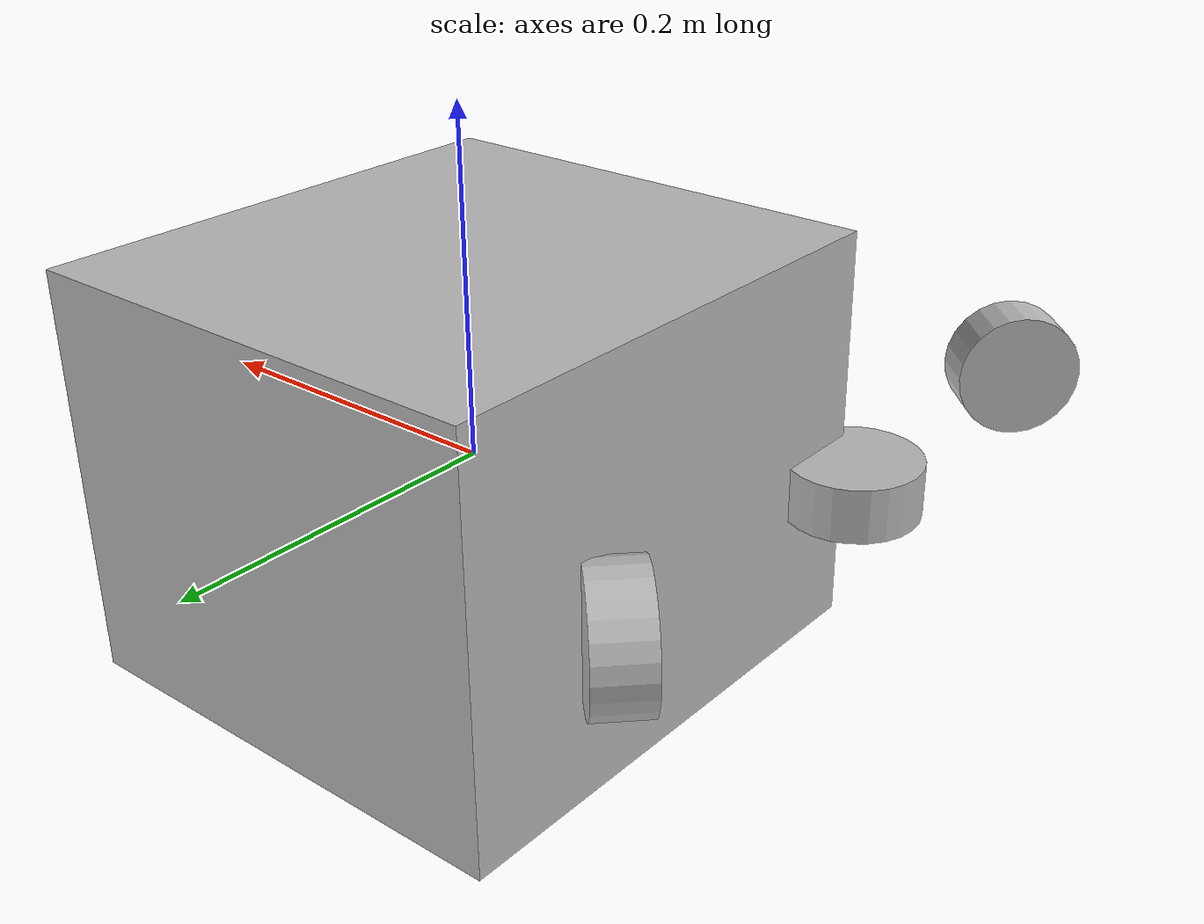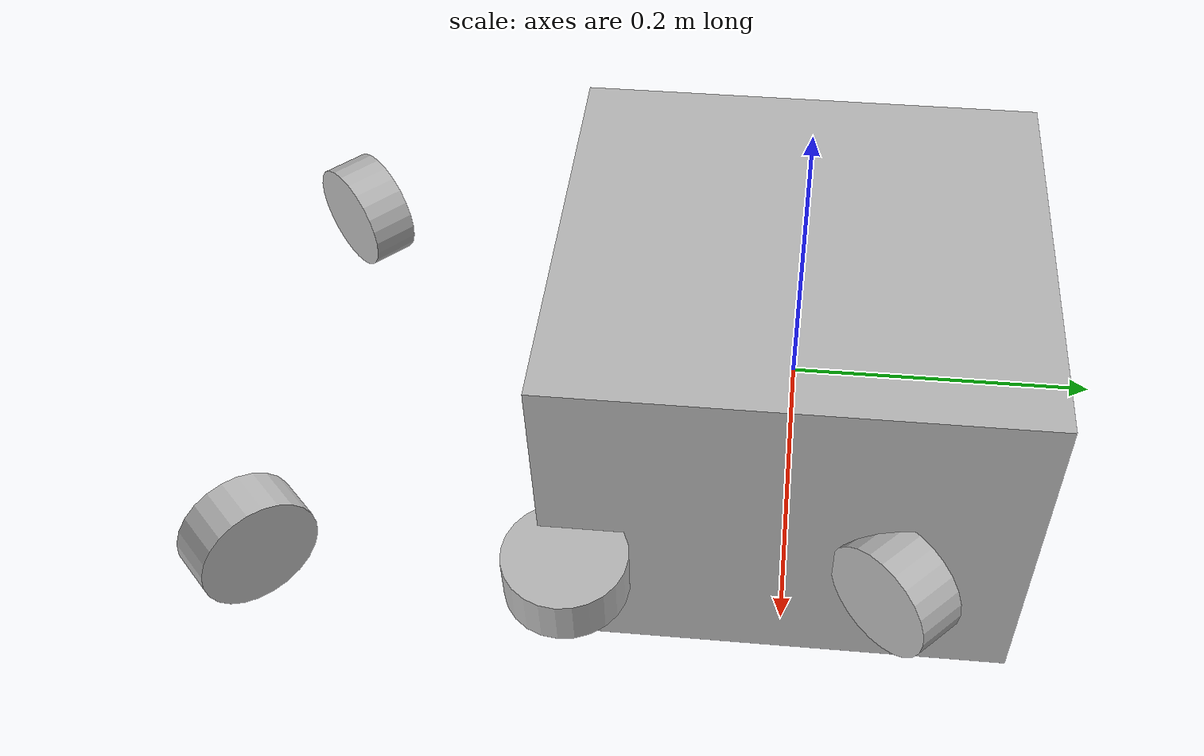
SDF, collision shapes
<?xml version="1.0"?>
<sdf version="1.5">
  <model name="nautilus">
    <pose>0 0 0 0 0 0</pose>

    <joint name="A_body" type="fixed">
      <parent>body</parent>
      <child>motor_A</child>
    </joint>

    <joint name="B_body" type="fixed">
      <parent>body</parent>
      <child>motor_B</child>
    </joint>

    <joint name="C_body" type="fixed">
      <parent>body</parent>
      <child>motor_C</child>
    </joint>

    <joint name="D_body" type="fixed">
      <parent>body</parent>
      <child>motor_D</child>
    </joint>

    <joint name="E_body" type="fixed">
      <parent>body</parent>
      <child>motor_E</child>
    </joint>

    <joint name="F_body" type="fixed">
      <parent>body</parent>
      <child>motor_F</child>
    </joint>

    <link name="body">
      <inertial>
        <pose>0 -.135 0 0 0 0</pose>
        <!-- TOOD: get a better mass estimate -->
        <mass>21.576</mass>
        <inertia>
          <ixx>0.083</ixx>
          <ixy>0.0</ixy>
          <ixz>0.0</ixz>
          <iyy>0.083</iyy>
          <iyz>0.0</iyz>
          <izz>0.083</izz>
        </inertia>
      </inertial>

      <collision name="body_collision">
        <geometry>
          <box>
            <!-- TODO: center model and tighten bounding box -->
            <size>.29 .31 .24</size>
          </box>
        </geometry>
      </collision>

      <visual name="body_visual">
        <geometry>
          <mesh>
            <uri>model://nautilus/meshes/nautilus.dae</uri>
          </mesh>
        </geometry>
      </visual>
    </link>

    <link name="motor_A">
      <pose relative_to="body">.16 -.34 -.02 -1.57 0 -.785</pose>

      <inertial>
        <!-- motors are included in buoyancy calcs so make sure to balance -->
        <!-- should really be 0 but can't have massless link in gazebo -->
        <mass>0.165792</mass>
      </inertial>

      <collision name="motor_a_collision">
        <geometry>
          <cylinder>
            <radius>.04</radius>
            <length>0.033</length>
          </cylinder>
        </geometry>
      </collision>

      <visual name="motor_a_visual">
        <transparency>1.0</transparency>
        <geometry>
          <cylinder>
            <radius>.04</radius>
            <length>0.033</length>
          </cylinder>
        </geometry>
      </visual>
    </link>

    <link name="motor_B">
      <pose relative_to="body">-.16 -.34 -.02 -1.57 0 .785</pose>

      <inertial>
        <mass>0.165792</mass>
      </inertial>

      <collision name="motor_b_collision">
        <geometry>
          <cylinder>
            <radius>.04</radius>
            <length>0.033</length>
          </cylinder>
        </geometry>
      </collision>

      <visual name="motor_b_visual">
        <geometry>
          <cylinder>
            <radius>.04</radius>
            <length>0.033</length>
          </cylinder>
        </geometry>
      </visual>
    </link>

    <link name="motor_C">
      <pose relative_to="body">.16 .07 -.02 -1.57 0 .785</pose>

      <inertial>
        <mass>0.165792</mass>
      </inertial>

      <collision name="motor_c_collision">
        <geometry>
          <cylinder>
            <radius>.04</radius>
            <length>0.033</length>
          </cylinder>
        </geometry>
      </collision>

      <visual name="motor_c_visual">
        <geometry>
          <cylinder>
            <radius>.04</radius>
            <length>0.033</length>
          </cylinder>
        </geometry>
      </visual>
    </link>

    <link name="motor_D">
      <pose relative_to="body">-.16 .07 -.02 -1.57 0 -.785</pose>

      <inertial>
        <mass>0.165792</mass>
      </inertial>

      <collision name="motor_d_collision">
        <geometry>
          <cylinder>
            <radius>.04</radius>
            <length>0.033</length>
          </cylinder>
        </geometry>
      </collision>

      <visual name="motor_d_visual">
        <geometry>
          <cylinder>
            <radius>.04</radius>
            <length>0.033</length>
          </cylinder>
        </geometry>
      </visual>
    </link>

    <link name="motor_E">
      <pose relative_to="body">.165 -.135 -.02 3.14 0 0</pose>

      <inertial>
        <mass>0.165792</mass>
      </inertial>

      <collision name="motor_e_collision">
        <geometry>
          <cylinder>
            <radius>.04</radius>
            <length>0.033</length>
          </cylinder>
        </geometry>
      </collision>

      <visual name="motor_e_visual">
        <geometry>
          <cylinder>
            <radius>.04</radius>
            <length>0.033</length>
          </cylinder>
        </geometry>
      </visual>
    </link>

    <link name="motor_F">
      <pose relative_to="body">-.165 -.135 -.02 3.14 0 0</pose>

      <inertial>
        <mass>0.165792</mass>
      </inertial>

      <collision name="motor_f_collision">
        <geometry>
          <cylinder>
            <radius>.04</radius>
            <length>0.033</length>
          </cylinder>
        </geometry>
      </collision>

      <visual name="motor_f_visual">
        <geometry>
          <cylinder>
            <radius>.04</radius>
            <length>0.033</length>
          </cylinder>
        </geometry>
      </visual>
    </link>

    <plugin name="BuoyancyPlugin" filename="libBuoyancyPlugin.so">
      <fluid_density>1000</fluid_density>
      <link name="body">
      <!-- TODO: calculate volume of ROV -->
      <!-- TODO: provide center of mass -->
        <volume>0.0215755</volume>
        <center_of_volume>0 -.135 0</center_of_volume>
      </link>
    </plugin>

  <plugin name="thruster" filename="libthruster.so"/>

  </model>
</sdf>
